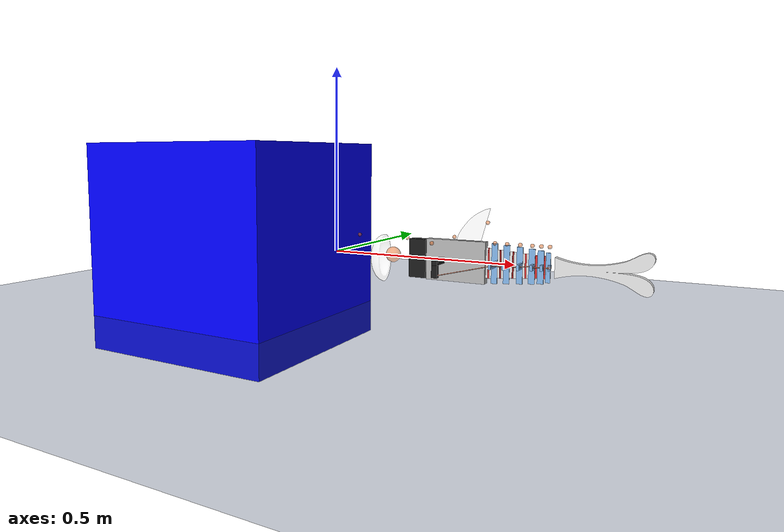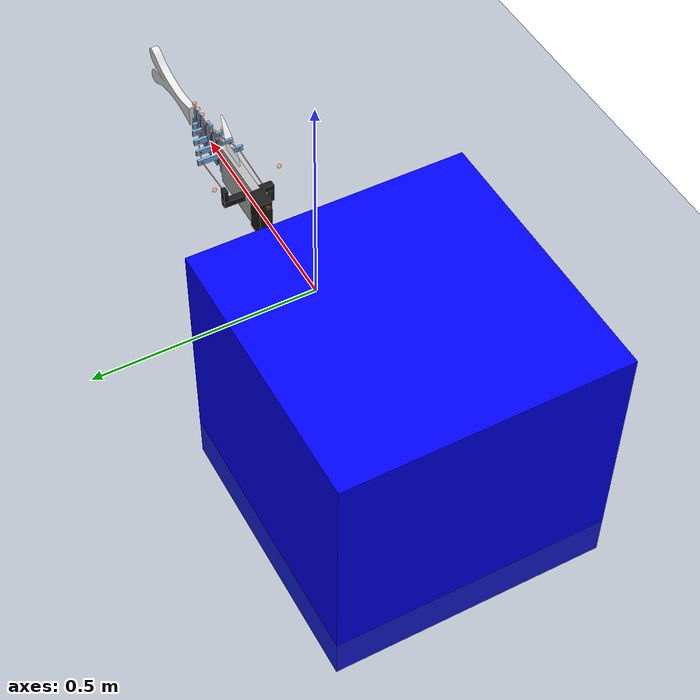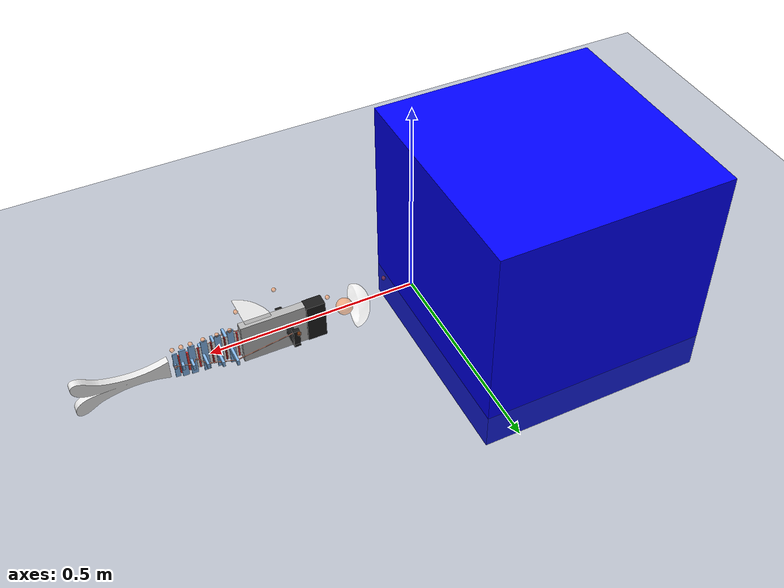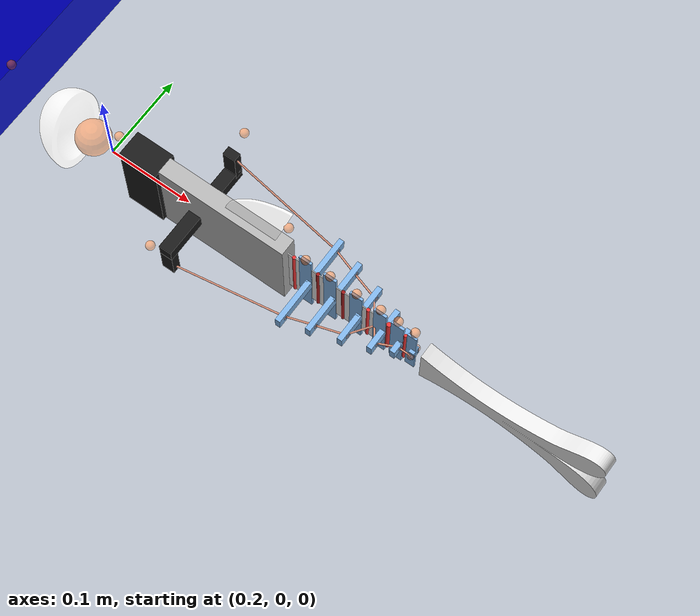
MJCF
<!--Creates a tendon fish based on Mike Yan Michelis' design. Adds a contact set between the head and the sliding block-->
<!-- Measures the force of the fish (from the thrust of its tail) via the TendonFishForce.py script and the force sensor on the block-->
<!--Future work could tweak parameters (ie masses and desnitities)-->
<!--Same design as TendonFish.xml, however, a few parameters are tweaked (ie sliding joints on first few body sections), more damping, and lower motor controls, as well as z-height damping-->

<mujoco model="tendonFish">
    <option gravity="0 0 0" density="1000" viscosity="0.0013" integrator="implicitfast" timestep="0.001" iterations="100" solver="Newton" tolerance="1e-15" ls_tolerance="1e-9" noslip_tolerance="1e-9" o_solimp="0 0.01 0.01 0.1 2">
        <flag contact="enable"/>
    </option>

    <visual>
        <global offheight="2160" offwidth="3840"/>
        <rgba haze=".3 .3 .3 1"/>
    </visual>

    <asset>
        <texture type="skybox" builtin="gradient" rgb1="0.6 0.6 0.6" rgb2="0 0 0" width="512" height="512"/>
        <texture name="texplane" type="2d" builtin="checker" rgb1=".15 .2 .35" rgb2=".2 .3 .45" width="512" height="512" mark="cross" markrgb=".8 .8 .8"/>
        <material name="matplane" reflectance="0.3" texture="texplane" texrepeat="10 10" texuniform="true"/>
        <mesh name="finTop" file="C:\Users\15405\OneDrive\Desktop\Career\ETHZ\ETHZ Work\mujoco-3.3.2-windows-x86_64\model\mesh\finTop.obj"/>
        <mesh name="finTail" file="C:\Users\15405\OneDrive\Desktop\Career\ETHZ\ETHZ Work\mujoco-3.3.2-windows-x86_64\model\mesh\finTail.obj"/>
        <mesh name="tailMesh" file="C:\Users\15405\OneDrive\Desktop\Career\ETHZ\ETHZ Work\mujoco-3.3.2-windows-x86_64\model\mesh\UpdatedTail.STL" scale="0.0025 0.0025 0.0045" />
        <mesh name="headMesh" file="C:\Users\15405\OneDrive\Desktop\Career\ETHZ\ETHZ Work\mujoco-3.3.2-windows-x86_64\model\mesh\FishNose.STL" scale="0.0015 0.0015 0.0025" />

        <material name="acrylic" rgba=".9 .9 .9 0.2"/>
        <material name="alu" reflectance="0.9" specular="0.9" shininess="0.9" rgba=".7 .7 .7 1"/>
        <material name="marker" rgba=".9 .4 .1 .5"/>
    </asset>

    <default>
        <joint type="hinge" pos="0 0 0" axis="0 0 1" range="-60 60" stiffness="20" damping="100"/>
        <geom fluidcoef="0.1 0.1 0.1 2.0 1.0" condim="1"/>
        <tendon width="0.001" rgba=".9 .6 .5 1" stiffness="20" damping="100"/>
    </default>

    <worldbody>
        <camera name="fixed" pos="0.4 -1.2 1.2" xyaxes="1 0 0 0 1 1"/>
        <camera name="fixedTop" pos="-0.75 0 1.5" xyaxes="0 -1 0 1 0 0.75"/>
        <camera name="fixedDiag" pos="0.75 -1 1" xyaxes="0.8 0.6 0 -0.4 0.5 0.75"/>
        <camera pos="0.625 -0.592 0.720" xyaxes="0.758 0.653 -0.000 -0.468 0.544 0.697"/>

        <geom name="floor" pos="0 0 -0.2" size="0 0 1" type="plane" material="matplane"/>
        <geom name="ceiling" pos="0 0 0.2" size="0 0 1" zaxis="0 0 -1" type="plane" rgba=".7 .1 .1 0"/>
        <light directional="true" diffuse=".8 .8 .8" specular=".2 .2 .2" pos="0 0 5" dir="0 0 -1"/>

        <body name="slider_body" pos="-.35 0  0">
        <!-- Creates a slider joint with very high damping. Need to position it tangent to the fish, and then figure out how to report the N3 law pair acting on it-->
            <joint name="slider_joint" type="slide" axis="1 0 0" damping="10000.0"/>
            <geom type="box" size=".3 .3 .3" rgba="0 0 1 1" mass="1000" contype="1" conaffinity="1"/>
            <site name="ft_sensor" pos="0 0 0" rgba="1 0 0 0.3" size=".3 .3 .3" type="box"/>
        </body>

        <body pos=".15 0 0">
            <joint name="headX" pos="0.02432519 0 0.00306519" type="slide" axis="1 0 0" stiffness="0" damping="0"/>
            <joint name="headZ" pos="0.02432519 0 0.00306519" type="slide" axis="0 0 1"  range="-.01 .01"/>

            <joint name="headRollX" type="hinge" pos="0.02432519 0 0.00306519" axis="1 0 0" range="-180 180" stiffness="10" damping="1"/>
            <joint name="headRollY" type="hinge" pos="0.02432519 0 0.00306519" axis="0 1 0" range="-180 180" stiffness="10" damping="1"/>
            <joint name="headRollZ" type="hinge" pos="0.02432519 0 0.00306519" axis="0 0 1" range="-180 180" stiffness="0" damping="0"/>

            <site name="COM" pos="0.02432519 0 0.00306519" size="0.02" material="marker"/>

            <geom name="head_mesh" type="mesh" mesh="headMesh" pos="0 -0.0385 -.07" size="0.077 0.0025 0.05" material="acrylic" density="118" fluidshape="ellipsoid"  quat="0.707106781187 0 0 0.707106781187" contype="1" conaffinity="1" />
            <geom name="headTopPlate" type="box" pos="0.01 0 0.0515" size="0.08 0.02 0.0015" rgba=".9 .9 .9 0" density="1180" contype="1" conaffinity="1"/>
            <geom name="headTopElectric" type="box" pos="0.005 0 0.083" size="0.06 0.04 0.03" rgba=".9 .9 .2 0." mass="0.53" contype="1" conaffinity="1"/>
            <geom name="headAttachment" type="box" pos="0.1 0 0" size="0.023 0.015 0.05" rgba=".1 .1 .1 1" mass="0.08" fluidshape="ellipsoid" contype="1" conaffinity="1"/>

            <geom name="body" type="box" pos="0.2005 0 0" size="0.0775 0.01 0.0525" material="alu" mass="0.6" fluidshape="ellipsoid" />
            <geom name="body-joint0" type="box" pos="0.28150000000000003 0 0" size="0.0035 0.0005 0.0375" rgba=".9 .9 .9 1" mass="0.001" fluidshape="ellipsoid" />

            <geom name="finTop" type="mesh" mesh="finTop" pos="0.26 0 0.04" material="acrylic" density="1180"/>

            <site name="marker0" pos="-0.077 0 0.05" size="0.005" material="marker"/>
            <site name="marker1" pos="0.065 0 0.05" size="0.005" material="marker"/>
            <site name="marker2" pos="0.1655 -0.0775 0.05" size="0.005" material="marker"/>
            <site name="marker3" pos="0.1655 0.0775 0.05" size="0.005" material="marker"/>
            <site name="bodyFin" pos="0.28 0 0.1" size="0.005" material="marker"/>

            <body pos="0.1655 0 0" name="motor" >
                <joint name="motor" type="hinge" axis="0 1 0" pos="0 0 0" limited="false" stiffness="0" damping="0"/>
                <geom name="motorShaft" type="box" pos="0 0 0" size="0.0075 0.06 0.0075" rgba=".1 .1 .1 1" mass="0.05" fluidshape="ellipsoid"/>
                <geom name="motorArmLeft" type="box" pos="0 -0.055 -0.01975" size="0.0075 0.005 0.01975" rgba=".1 .1 .1 1" density="1250" fluidshape="ellipsoid" contype="0" conaffinity="0"/>
                <geom name="motorArmRight" type="box" pos="0 0.055 0.01975" size="0.0075 0.005 0.01975" rgba=".1 .1 .1 1" density="1250" fluidshape="ellipsoid" contype="0" conaffinity="0"/>

                <site name="bodyLeft" pos="0 -0.055 -0.0345" size="0.005" rgba=".9 .6 .5 .5"/>
                <site name="bodyRight" pos="0 0.055 0.0345" size="0.005" rgba=".9 .6 .5 .5"/>
            </body>

            <body pos="0.28500000000000003 0 0">
                <geom name="joint0" type="cylinder" pos="0 0 0" size="0.002 0.0376" rgba=".9 .2 .2 1" mass="0" contype="0" conaffinity="0"/>
                <joint name="joint0"/>
                <geom name="joint0-tail0" type="box" pos="0.0035 0 0" size="0.0035 0.0005 0.0375" rgba=".9 .9 .9 1" mass="0.001" fluidshape="ellipsoid" contype="0" conaffinity="0"/>
                <geom name="tail0" type="box" pos="0.014499999999999999 0 0" size="0.0075 0.0015 0.05" rgba=".5 .7 .9 1" density="1250" fluidshape="ellipsoid" contype="0" conaffinity="0"/>
                <site name="marker4" pos="0.014499999999999999 0 0.05" size="0.005" material="marker"/>

                <geom name="tail0left" type="box" pos="0.019 -0.02575 0" size="0.003 0.02925 0.007" rgba=".5 .7 .9 1" density="1250" fluidshape="ellipsoid" contype="0" conaffinity="0"/>
                <geom name="tail0right" type="box" pos="0.019 0.02575 0" size="0.003 0.02925 0.007" rgba=".5 .7 .9 1" density="1250" fluidshape="ellipsoid" contype="0" conaffinity="0"/>
                <site name="tail0left" pos="0.019 -0.045 0" size="0.004" rgba=".9 .6 .5 .5"/>
                <site name="tail0right" pos="0.019 0.045 0" size="0.004" rgba=".9 .6 .5 .5"/>

                <geom name="tail0-joint1" type="box" pos="0.02575 0 0" size="0.00375 0.0005 0.035" rgba=".9 .9 .9 1" mass="0.001" fluidshape="ellipsoid" contype="0" conaffinity="0"/>

                <joint name="tailDamper1" pos="0.0 0 0.0" type="slide" axis="1 0 0" damping="125"/>

                <body pos="0.0295 0 0">
                    <geom name="joint1" type="cylinder" pos="0 0 0" size="0.002 0.0351" rgba=".6 .1 .1 1" mass="0" contype="0" conaffinity="0"/>
                    <joint name="joint1"/>
                    <geom name="joint1-tail1" type="box" pos="0.00375 0 0" size="0.00375 0.0005 0.035" rgba=".9 .9 .9 1" mass="0.001" fluidshape="ellipsoid" contype="0" conaffinity="0"/>
                    <geom name="tail1" type="box" pos="0.015 0 0" size="0.0075 0.0015 0.0475" rgba=".5 .7 .9 1" density="1250" fluidshape="ellipsoid" contype="0" conaffinity="0"/>
                    <site name="marker5" pos="0.015 0 0.05" size="0.005" material="marker"/>

                    <geom name="tail1left" type="box" pos="0.0195 -0.02075 0" size="0.003 0.02425 0.007" rgba=".5 .7 .9 1" density="1250" fluidshape="ellipsoid" contype="0" conaffinity="0"/>
                    <geom name="tail1right" type="box" pos="0.0195 0.02075 0" size="0.003 0.02425 0.007" rgba=".5 .7 .9 1" density="1250" fluidshape="ellipsoid" contype="0" conaffinity="0"/>
                    <site name="tail1left" pos="0.0195 -0.035 0" size="0.004" rgba=".9 .6 .5 .5"/>
                    <site name="tail1right" pos="0.0195 0.035 0" size="0.004" rgba=".9 .6 .5 .5"/>

                    <geom name="tail1-joint2" type="box" pos="0.02675 0 0" size="0.00425 0.0005 0.0325" rgba=".9 .9 .9 1" mass="0.001" fluidshape="ellipsoid" contype="0" conaffinity="0"/>
                    <joint name="tailDamper2" pos="0.0 0 0.0" type="slide" axis="1 0 0" damping="50"/>

                    <body pos="0.031 0 0">
                        <geom name="joint2" type="cylinder" pos="0 0 0" size="0.002 0.0326" rgba=".6 .1 .1 1" mass="0" contype="0" conaffinity="0"/>
                        <joint name="joint2"/>
                        <geom name="joint2-tail2" type="box" pos="0.00425 0 0" size="0.00425 0.0005 0.0325" rgba=".9 .9 .9 1" mass="0.001" fluidshape="ellipsoid" contype="0" conaffinity="0"/>
                        <geom name="tail2" type="box" pos="0.016 0 0" size="0.0075 0.0015 0.045" rgba=".5 .7 .9 1" density="1250" fluidshape="ellipsoid" contype="0" conaffinity="0"/>
                        <site name="marker6" pos="0.016 0 0.05" size="0.005" material="marker"/>

                        <geom name="tail2left" type="box" pos="0.0205 -0.01575 0" size="0.003 0.01925 0.007" rgba=".5 .7 .9 1" density="1250" fluidshape="ellipsoid" contype="0" conaffinity="0"/>
                        <geom name="tail2right" type="box" pos="0.0205 0.01575 0" size="0.003 0.01925 0.007" rgba=".5 .7 .9 1" density="1250" fluidshape="ellipsoid" contype="0" conaffinity="0"/>
                        <site name="tail2left" pos="0.0205 -0.025 0" size="0.004" rgba=".9 .6 .5 .5"/>
                        <site name="tail2right" pos="0.0205 0.025 0" size="0.004" rgba=".9 .6 .5 .5"/>

                        <geom name="tail2-joint3" type="box" pos="0.027 0 0" size="0.0035 0.0005 0.03" rgba=".9 .9 .9 1" mass="0.001" fluidshape="ellipsoid" contype="0" conaffinity="0"/>

                        <joint name="tailDamper3" pos="0.0 0 0.0" type="slide" axis="1 0 0" damping="50"/>

                        <body pos="0.0305 0 0">
                            <geom name="joint3" type="cylinder" pos="0 0 0" size="0.002 0.0301" rgba=".9 .2 .2 1" mass="0" contype="0" conaffinity="0"/>
                            <joint name="joint3"/>
                            <geom name="joint3-tail3" type="box" pos="0.0035 0 0" size="0.0035 0.0005 0.03" rgba=".9 .9 .9 1" mass="0.001" fluidshape="ellipsoid" contype="0" conaffinity="0"/>
                            <geom name="tail3" type="box" pos="0.014499999999999999 0 0" size="0.0075 0.0015 0.0425" rgba=".5 .7 .9 1" density="1250" fluidshape="ellipsoid" contype="0" conaffinity="0"/>
                            <site name="marker7" pos="0.014499999999999999 0 0.05" size="0.005" material="marker"/>

                            <geom name="tail3left" type="box" pos="0.019 -0.01075 0" size="0.003 0.01425 0.007" rgba=".5 .7 .9 1" density="1250" fluidshape="ellipsoid" contype="0" conaffinity="0"/>
                            <geom name="tail3right" type="box" pos="0.019 0.01075 0" size="0.003 0.01425 0.007" rgba=".5 .7 .9 1" density="1250" fluidshape="ellipsoid" contype="0" conaffinity="0"/>
                            <site name="tail3left" pos="0.019 -0.015 0" size="0.004" rgba=".9 .6 .5 .5"/>
                            <site name="tail3right" pos="0.019 0.015 0" size="0.004" rgba=".9 .6 .5 .5"/>

                            <geom name="tail3-joint4" type="box" pos="0.0235 0 0" size="0.0015 0.0005 0.0275" rgba=".9 .9 .9 1" mass="0.001" fluidshape="ellipsoid" contype="0" conaffinity="0"/>

                            <joint name="tailDamper4" pos="0.0 0 0.0" type="slide" axis="0 0 1" damping="50"/>

                            <body pos="0.024999999999999998 0 0">
                                <geom name="joint4" type="cylinder" pos="0 0 0" size="0.0025 0.0276" rgba=".9 .2 .2 1" mass="0" contype="0" conaffinity="0"/>
                                <joint name="joint4"/>
                                <geom name="joint4-tail4" type="box" pos="0.0015 0 0" size="0.0015 0.0005 0.0275" rgba=".9 .9 .9 1" mass="0.001" fluidshape="ellipsoid" contype="0" conaffinity="0"/>
                                <geom name="tail4" type="box" pos="0.010499999999999999 0 0" size="0.0075 0.0015 0.04" rgba=".5 .7 .9 1" density="1250" fluidshape="ellipsoid" contype="0" conaffinity="0"/>
                                <site name="marker8" pos="0.010499999999999999 0 0.05" size="0.005" material="marker"/>

                                <geom name="tail4left" type="box" pos="0.015 -0.00575 0" size="0.003 0.00925 0.007" rgba=".5 .7 .9 1" density="1250" fluidshape="ellipsoid" contype="0" conaffinity="0"/>
                                <geom name="tail4right" type="box" pos="0.015 0.00575 0" size="0.003 0.00925 0.007" rgba=".5 .7 .9 1" density="1250" fluidshape="ellipsoid" contype="0" conaffinity="0"/>
                                <site name="tail4left" pos="0.015 -0.005 0" size="0.004" rgba=".9 .6 .5 .5"/>
                                <site name="tail4right" pos="0.015 0.005 0" size="0.004" rgba=".9 .6 .5 .5"/>

                                <joint name="tailDamper5" pos="0.0 0 0.0" type="slide" axis="0 0 1" damping="50"/>

                                <body pos="0.02 0 0">
                                    <geom name="joint5" type="cylinder" pos="0 0 0" size="0.00175 0.0276" rgba=".9 .2 .2 1" mass="0" contype="0" conaffinity="0"/>
                                    <joint name="joint5"/>
                                    <geom name="joint5-tail5" type="box" pos="0.0015 0 0" size="0.0015 0.0005 0.0275" rgba=".9 .9 .9 1" mass="0.001" fluidshape="ellipsoid" contype="0" conaffinity="0"/>
                                    <geom name="tail5" type="box" pos="0.008 0 0" size="0.0055 0.0012 0.036" rgba=".5 .7 .9 1" density="1250" fluidshape="ellipsoid" contype="0" conaffinity="0"/>
                                    <site name="marker9" pos="0.010499999999999999 0 0.05" size="0.005" material="marker"/>

                                    <geom name="tail5left" type="box" pos="0.011 -0.00075 0" size="0.003 0.00425 0.007" rgba=".5 .7 .9 1" density="1250" fluidshape="ellipsoid" contype="0" conaffinity="0"/>
                                    <geom name="tail5right" type="box" pos="0.011 0.00075 0" size="0.003 0.00425 0.007" rgba=".5 .7 .9 1" density="1250" fluidshape="ellipsoid" contype="0" conaffinity="0"/>
                                    <site name="tail5left" pos="0.011 -0.005 0" size="0.004" rgba=".9 .6 .5 .5"/>
                                    <site name="tail5right" pos="0.011 0.005 0" size="0.004" rgba=".9 .6 .5 .5"/>

                                    <joint name="tailDamper6" pos="0.0 0 0.0" type="slide" axis="0 0 1" damping="50"/>

                                <!-- Tail Fin -->
                                <geom name="finTail" type="mesh"  mesh="tailMesh" pos=".025 .0085 -.05" size="0.005 0.005 0.025" quat="0.7071 0.7071 0 0" rgba=".9 .9 .9 1" mass="0.005" fluidshape="ellipsoid" contype="0" conaffinity="0"/>
                                <site name="marker10" pos="0.025 .0085 -0.5" size="0.005" material="marker"/>

                                </body>
                            </body>
                        </body>
                    </body>
                </body>
            </body>
        </body>

    </worldbody>

    <tendon>
        <spatial name="tendonLeft">
            <site site="bodyLeft"/>
            <site site="tail0left"/>
            <site site="tail1left"/>
            <site site="tail2left"/>
            <site site="tail3right"/>
            <site site="tail4right"/>
            <site site="tail5right"/>
        </spatial>
        <spatial name="tendonRight">
            <site site="bodyRight"/>
            <site site="tail0right"/>
            <site site="tail1right"/>
            <site site="tail2right"/>
            <site site="tail3left"/>
            <site site="tail4left"/>
            <site site="tail5left"/>
        </spatial>
    </tendon>

    <actuator>
        <velocity name="motor" joint="motor" kv="100" ctrllimited="true" ctrlrange="-5 5" forcerange="-5 5"/>
    </actuator>

    <sensor>
        <force name = "force" site="ft_sensor" />
	</sensor>

</mujoco>
